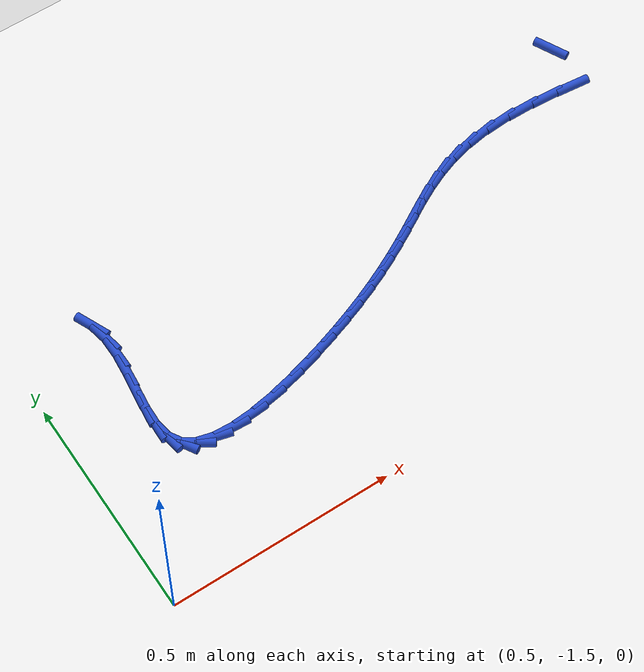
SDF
<sdf version="1.6">
 <world name="default">
  <model name="ground_plane">
   <static>1</static>
   <link name="link">
    <collision name="collision">
     <geometry><plane><normal>0 0 1</normal><size>100 100</size></plane></geometry>
     <surface><friction><ode><mu>100</mu><mu2>50</mu2></ode></friction></surface>
    </collision>
    <visual name="visual">
     <cast_shadows>0</cast_shadows>
     <geometry><plane><normal>0 0 1</normal><size>100 100</size></plane></geometry>
     <material>
      <script><uri>file://media/materials/scripts/gazebo.material</uri><name>Gazebo/WhiteGlow</name></script>
     </material>
    </visual>
   </link>
  </model>
  <model name="line">
   <link name="link_142">
    <pose>1.8841525023855348 -0.8483196131609883 0.01 0 1.57 -1.1149660216257167</pose>
    <collision name="collision">
     <geometry><cylinder><radius>0.01</radius><length>0.08</length></cylinder></geometry>
    </collision>
    <visual name="visual">
     <material>
      <script><name>Gazebo/Blue</name><uri>file://media/materials/scripts/gazebo.material</uri></script>
     </material>
     <geometry><cylinder><radius>0.01</radius><length>0.08</length></cylinder></geometry>
    </visual>
   </link>
   <link name="link_157">
    <pose>1.863333238175601 -0.9530008465977738 0.01 0 1.57 -0.1015692070725654</pose>
    <collision name="collision">
     <geometry><cylinder><radius>0.01</radius><length>0.08</length></cylinder></geometry>
    </collision>
    <visual name="visual">
     <material>
      <script><name>Gazebo/Blue</name><uri>file://media/materials/scripts/gazebo.material</uri></script>
     </material>
     <geometry><cylinder><radius>0.01</radius><length>0.08</length></cylinder></geometry>
    </visual>
   </link>
   <link name="link_158">
    <pose>1.80043320874872 -0.9465900801694339 0.01 0 1.57 -0.06238295053354625</pose>
    <collision name="collision">
     <geometry><cylinder><radius>0.01</radius><length>0.08</length></cylinder></geometry>
    </collision>
    <visual name="visual">
     <material>
      <script><name>Gazebo/Blue</name><uri>file://media/materials/scripts/gazebo.material</uri></script>
     </material>
     <geometry><cylinder><radius>0.01</radius><length>0.08</length></cylinder></geometry>
    </visual>
   </link>
   <link name="link_159">
    <pose>1.7382237870433446 -0.9427042308182975 0.01 0 1.57 -0.007404587649150495</pose>
    <collision name="collision">
     <geometry><cylinder><radius>0.01</radius><length>0.08</length></cylinder></geometry>
    </collision>
    <visual name="visual">
     <material>
      <script><name>Gazebo/Blue</name><uri>file://media/materials/scripts/gazebo.material</uri></script>
     </material>
     <geometry><cylinder><radius>0.01</radius><length>0.08</length></cylinder></geometry>
    </visual>
   </link>
   <link name="link_160">
    <pose>1.6789506139562769 -0.9422653293915512 0.01 0 1.57 0.0713140693834999</pose>
    <collision name="collision">
     <geometry><cylinder><radius>0.01</radius><length>0.08</length></cylinder></geometry>
    </collision>
    <visual name="visual">
     <material>
      <script><name>Gazebo/Blue</name><uri>file://media/materials/scripts/gazebo.material</uri></script>
     </material>
     <geometry><cylinder><radius>0.01</radius><length>0.08</length></cylinder></geometry>
    </visual>
   </link>
   <link name="link_161">
    <pose>1.624748590394745 -0.9461372623122885 0.01 0 1.57 0.16643170218546804</pose>
    <collision name="collision">
     <geometry><cylinder><radius>0.01</radius><length>0.08</length></cylinder></geometry>
    </collision>
    <visual name="visual">
     <material>
      <script><name>Gazebo/Blue</name><uri>file://media/materials/scripts/gazebo.material</uri></script>
     </material>
     <geometry><cylinder><radius>0.01</radius><length>0.08</length></cylinder></geometry>
    </visual>
   </link>
   <link name="link_162">
    <pose>1.5760903644398674 -0.9543111442646919 0.01 0 1.57 0.2623144029397136</pose>
    <collision name="collision">
     <geometry><cylinder><radius>0.01</radius><length>0.08</length></cylinder></geometry>
    </collision>
    <visual name="visual">
     <material>
      <script><name>Gazebo/Blue</name><uri>file://media/materials/scripts/gazebo.material</uri></script>
     </material>
     <geometry><cylinder><radius>0.01</radius><length>0.08</length></cylinder></geometry>
    </visual>
   </link>
   <link name="link_163">
    <pose>1.532166285935074 -0.9661048146975887 0.01 0 1.57 0.3522203689737729</pose>
    <collision name="collision">
     <geometry><cylinder><radius>0.01</radius><length>0.08</length></cylinder></geometry>
    </collision>
    <visual name="visual">
     <material>
      <script><name>Gazebo/Blue</name><uri>file://media/materials/scripts/gazebo.material</uri></script>
     </material>
     <geometry><cylinder><radius>0.01</radius><length>0.08</length></cylinder></geometry>
    </visual>
   </link>
   <link name="link_164">
    <pose>1.4921335636495636 -0.9808187122213003 0.01 0 1.57 0.42939333146302044</pose>
    <collision name="collision">
     <geometry><cylinder><radius>0.01</radius><length>0.08</length></cylinder></geometry>
    </collision>
    <visual name="visual">
     <material>
      <script><name>Gazebo/Blue</name><uri>file://media/materials/scripts/gazebo.material</uri></script>
     </material>
     <geometry><cylinder><radius>0.01</radius><length>0.08</length></cylinder></geometry>
    </visual>
   </link>
   <link name="link_165">
    <pose>1.4551494063525365 -0.9977532754461491 0.01 0 1.57 0.4878775273697918</pose>
    <collision name="collision">
     <geometry><cylinder><radius>0.01</radius><length>0.08</length></cylinder></geometry>
    </collision>
    <visual name="visual">
     <material>
      <script><name>Gazebo/Blue</name><uri>file://media/materials/scripts/gazebo.material</uri></script>
     </material>
     <geometry><cylinder><radius>0.01</radius><length>0.08</length></cylinder></geometry>
    </visual>
   </link>
   <link name="link_166">
    <pose>1.4203710228131938 -1.0162089429824552 0.01 0 1.57 0.5232579904232334</pose>
    <collision name="collision">
     <geometry><cylinder><radius>0.01</radius><length>0.08</length></cylinder></geometry>
    </collision>
    <visual name="visual">
     <material>
      <script><name>Gazebo/Blue</name><uri>file://media/materials/scripts/gazebo.material</uri></script>
     </material>
     <geometry><cylinder><radius>0.01</radius><length>0.08</length></cylinder></geometry>
    </visual>
   </link>
   <link name="link_167">
    <pose>1.3869556218007353 -1.0354861534405408 0.01 0 1.57 0.53283154829484</pose>
    <collision name="collision">
     <geometry><cylinder><radius>0.01</radius><length>0.08</length></cylinder></geometry>
    </collision>
    <visual name="visual">
     <material>
      <script><name>Gazebo/Blue</name><uri>file://media/materials/scripts/gazebo.material</uri></script>
     </material>
     <geometry><cylinder><radius>0.01</radius><length>0.08</length></cylinder></geometry>
    </visual>
   </link>
   <link name="link_168">
    <pose>1.35406041208436 -1.0548853454307268 0.01 0 1.57 0.5178223468903131</pose>
    <collision name="collision">
     <geometry><cylinder><radius>0.01</radius><length>0.08</length></cylinder></geometry>
    </collision>
    <visual name="visual">
     <material>
      <script><name>Gazebo/Blue</name><uri>file://media/materials/scripts/gazebo.material</uri></script>
     </material>
     <geometry><cylinder><radius>0.01</radius><length>0.08</length></cylinder></geometry>
    </visual>
   </link>
   <link name="link_169">
    <pose>1.3208896775870433 -1.073781846447576 0.01 0 1.57 0.4934363916704503</pose>
    <collision name="collision">
     <geometry><cylinder><radius>0.01</radius><length>0.08</length></cylinder></geometry>
    </collision>
    <visual name="visual">
     <material>
      <script><name>Gazebo/Blue</name><uri>file://media/materials/scripts/gazebo.material</uri></script>
     </material>
     <geometry><cylinder><radius>0.01</radius><length>0.08</length></cylinder></geometry>
    </visual>
   </link>
   <link name="link_170">
    <pose>1.2869514399234725 -1.0920341810654106 0.01 0 1.57 0.4663797882949359</pose>
    <collision name="collision">
     <geometry><cylinder><radius>0.01</radius><length>0.08</length></cylinder></geometry>
    </collision>
    <visual name="visual">
     <material>
      <script><name>Gazebo/Blue</name><uri>file://media/materials/scripts/gazebo.material</uri></script>
     </material>
     <geometry><cylinder><radius>0.01</radius><length>0.08</length></cylinder></geometry>
    </visual>
   </link>
   <link name="link_171">
    <pose>1.25187430748267 -1.1096927077297165 0.01 0 1.57 0.4375598921036036</pose>
    <collision name="collision">
     <geometry><cylinder><radius>0.01</radius><length>0.08</length></cylinder></geometry>
    </collision>
    <visual name="visual">
     <material>
      <script><name>Gazebo/Blue</name><uri>file://media/materials/scripts/gazebo.material</uri></script>
     </material>
     <geometry><cylinder><radius>0.01</radius><length>0.08</length></cylinder></geometry>
    </visual>
   </link>
   <link name="link_172">
    <pose>1.215287193684848 -1.1268082701408006 0.01 0 1.57 0.40789837295177966</pose>
    <collision name="collision">
     <geometry><cylinder><radius>0.01</radius><length>0.08</length></cylinder></geometry>
    </collision>
    <visual name="visual">
     <material>
      <script><name>Gazebo/Blue</name><uri>file://media/materials/scripts/gazebo.material</uri></script>
     </material>
     <geometry><cylinder><radius>0.01</radius><length>0.08</length></cylinder></geometry>
    </visual>
   </link>
   <link name="link_173">
    <pose>1.1768190119502178 -1.1434317119989712 0.01 0 1.57 0.37826094107988906</pose>
    <collision name="collision">
     <geometry><cylinder><radius>0.01</radius><length>0.08</length></cylinder></geometry>
    </collision>
    <visual name="visual">
     <material>
      <script><name>Gazebo/Blue</name><uri>file://media/materials/scripts/gazebo.material</uri></script>
     </material>
     <geometry><cylinder><radius>0.01</radius><length>0.08</length></cylinder></geometry>
    </visual>
   </link>
   <link name="link_174">
    <pose>1.1360986756989933 -1.1596138770045343 0.01 0 1.57 0.34939095591263036</pose>
    <collision name="collision">
     <geometry><cylinder><radius>0.01</radius><length>0.08</length></cylinder></geometry>
    </collision>
    <visual name="visual">
     <material>
      <script><name>Gazebo/Blue</name><uri>file://media/materials/scripts/gazebo.material</uri></script>
     </material>
     <geometry><cylinder><radius>0.01</radius><length>0.08</length></cylinder></geometry>
    </visual>
   </link>
   <link name="link_175">
    <pose>1.0927550983513858 -1.1754056088577973 0.01 0 1.57 0.32187046555529936</pose>
    <collision name="collision">
     <geometry><cylinder><radius>0.01</radius><length>0.08</length></cylinder></geometry>
    </collision>
    <visual name="visual">
     <material>
      <script><name>Gazebo/Blue</name><uri>file://media/materials/scripts/gazebo.material</uri></script>
     </material>
     <geometry><cylinder><radius>0.01</radius><length>0.08</length></cylinder></geometry>
    </visual>
   </link>
   <link name="link_176">
    <pose>1.0464171933276074 -1.1908577512590672 0.01 0 1.57 0.29525401902226495</pose>
    <collision name="collision">
     <geometry><cylinder><radius>0.01</radius><length>0.08</length></cylinder></geometry>
    </collision>
    <visual name="visual">
     <material>
      <script><name>Gazebo/Blue</name><uri>file://media/materials/scripts/gazebo.material</uri></script>
     </material>
     <geometry><cylinder><radius>0.01</radius><length>0.08</length></cylinder></geometry>
    </visual>
   </link>
   <link name="link_177">
    <pose>0.9969012862162262 -1.2059177032022075 0.01 0 1.57 0.26287873481981266</pose>
    <collision name="collision">
     <geometry><cylinder><radius>0.01</radius><length>0.08</length></cylinder></geometry>
    </collision>
    <visual name="visual">
     <material>
      <script><name>Gazebo/Blue</name><uri>file://media/materials/scripts/gazebo.material</uri></script>
     </material>
     <geometry><cylinder><radius>0.01</radius><length>0.08</length></cylinder></geometry>
    </visual>
   </link>
   <link name="link_178">
    <pose>0.9453864604524894 -1.2197806708718208 0.01 0 1.57 0.21927135845628798</pose>
    <collision name="collision">
     <geometry><cylinder><radius>0.01</radius><length>0.08</length></cylinder></geometry>
    </collision>
    <visual name="visual">
     <material>
      <script><name>Gazebo/Blue</name><uri>file://media/materials/scripts/gazebo.material</uri></script>
     </material>
     <geometry><cylinder><radius>0.01</radius><length>0.08</length></cylinder></geometry>
    </visual>
   </link>
   <link name="link_179">
    <pose>0.8936539599080126 -1.23130948977392 0.01 0 1.57 0.15922729126191054</pose>
    <collision name="collision">
     <geometry><cylinder><radius>0.01</radius><length>0.08</length></cylinder></geometry>
    </collision>
    <visual name="visual">
     <material>
      <script><name>Gazebo/Blue</name><uri>file://media/materials/scripts/gazebo.material</uri></script>
     </material>
     <geometry><cylinder><radius>0.01</radius><length>0.08</length></cylinder></geometry>
    </visual>
   </link>
   <link name="link_180">
    <pose>0.8434876886832957 -1.2393655270648458 0.01 0 1.57 0.07344533503969917</pose>
    <collision name="collision">
     <geometry><cylinder><radius>0.01</radius><length>0.08</length></cylinder></geometry>
    </collision>
    <visual name="visual">
     <material>
      <script><name>Gazebo/Blue</name><uri>file://media/materials/scripts/gazebo.material</uri></script>
     </material>
     <geometry><cylinder><radius>0.01</radius><length>0.08</length></cylinder></geometry>
    </visual>
   </link>
   <link name="link_181">
    <pose>0.7966715508788395 -1.242810149900936 0.01 0 1.57 -0.055253402844461855</pose>
    <collision name="collision">
     <geometry><cylinder><radius>0.01</radius><length>0.08</length></cylinder></geometry>
    </collision>
    <visual name="visual">
     <material>
      <script><name>Gazebo/Blue</name><uri>file://media/materials/scripts/gazebo.material</uri></script>
     </material>
     <geometry><cylinder><radius>0.01</radius><length>0.08</length></cylinder></geometry>
    </visual>
   </link>
   <link name="link_182">
    <pose>0.754989450595144 -1.240504725438531 0.01 0 1.57 -0.25855118359278684</pose>
    <collision name="collision">
     <geometry><cylinder><radius>0.01</radius><length>0.08</length></cylinder></geometry>
    </collision>
    <visual name="visual">
     <material>
      <script><name>Gazebo/Blue</name><uri>file://media/materials/scripts/gazebo.material</uri></script>
     </material>
     <geometry><cylinder><radius>0.01</radius><length>0.08</length></cylinder></geometry>
    </visual>
   </link>
   <link name="link_183">
    <pose>0.7202252919327118 -1.23131062083397 0.01 0 1.57 -0.5839151359982597</pose>
    <collision name="collision">
     <geometry><cylinder><radius>0.01</radius><length>0.08</length></cylinder></geometry>
    </collision>
    <visual name="visual">
     <material>
      <script><name>Gazebo/Blue</name><uri>file://media/materials/scripts/gazebo.material</uri></script>
     </material>
     <geometry><cylinder><radius>0.01</radius><length>0.08</length></cylinder></geometry>
    </visual>
   </link>
   <link name="link_184">
    <pose>0.6941629789920434 -1.214089203243592 0.01 0 1.57 -1.034084203194076</pose>
    <collision name="collision">
     <geometry><cylinder><radius>0.01</radius><length>0.08</length></cylinder></geometry>
    </collision>
    <visual name="visual">
     <material>
      <script><name>Gazebo/Blue</name><uri>file://media/materials/scripts/gazebo.material</uri></script>
     </material>
     <geometry><cylinder><radius>0.01</radius><length>0.08</length></cylinder></geometry>
    </visual>
   </link>
   <link name="link_185">
    <pose>0.6785000442267181 -1.187763577540232 0.01 0 1.57 -1.4067672838452123</pose>
    <collision name="collision">
     <geometry><cylinder><radius>0.01</radius><length>0.08</length></cylinder></geometry>
    </collision>
    <visual name="visual">
     <material>
      <script><name>Gazebo/Blue</name><uri>file://media/materials/scripts/gazebo.material</uri></script>
     </material>
     <geometry><cylinder><radius>0.01</radius><length>0.08</length></cylinder></geometry>
    </visual>
   </link>
   <link name="link_186">
    <pose>0.6727195804763857 -1.1528397111442643 0.01 0 1.57 1.5409016356526541</pose>
    <collision name="collision">
     <geometry><cylinder><radius>0.01</radius><length>0.08</length></cylinder></geometry>
    </collision>
    <visual name="visual">
     <material>
      <script><name>Gazebo/Blue</name><uri>file://media/materials/scripts/gazebo.material</uri></script>
     </material>
     <geometry><cylinder><radius>0.01</radius><length>0.08</length></cylinder></geometry>
    </visual>
   </link>
   <link name="link_187">
    <pose>0.6739557090185555 -1.1115025963126701 0.01 0 1.57 1.455370025580681</pose>
    <collision name="collision">
     <geometry><cylinder><radius>0.01</radius><length>0.08</length></cylinder></geometry>
    </collision>
    <visual name="visual">
     <material>
      <script><name>Gazebo/Blue</name><uri>file://media/materials/scripts/gazebo.material</uri></script>
     </material>
     <geometry><cylinder><radius>0.01</radius><length>0.08</length></cylinder></geometry>
    </visual>
   </link>
   <link name="link_188">
    <pose>0.679229243751473 -1.0660182164506478 0.01 0 1.57 1.4379059991224001</pose>
    <collision name="collision">
     <geometry><cylinder><radius>0.01</radius><length>0.08</length></cylinder></geometry>
    </collision>
    <visual name="visual">
     <material>
      <script><name>Gazebo/Blue</name><uri>file://media/materials/scripts/gazebo.material</uri></script>
     </material>
     <geometry><cylinder><radius>0.01</radius><length>0.08</length></cylinder></geometry>
    </visual>
   </link>
   <link name="link_189">
    <pose>0.6855609985733832 -1.0186525549633978 0.01 0 1.57 1.4771861157994683</pose>
    <collision name="collision">
     <geometry><cylinder><radius>0.01</radius><length>0.08</length></cylinder></geometry>
    </collision>
    <visual name="visual">
     <material>
      <script><name>Gazebo/Blue</name><uri>file://media/materials/scripts/gazebo.material</uri></script>
     </material>
     <geometry><cylinder><radius>0.01</radius><length>0.08</length></cylinder></geometry>
    </visual>
   </link>
   <link name="link_190">
    <pose>0.6899717873825318 -0.9716715952561181 0.01 0 1.57 -1.5597577434763295</pose>
    <collision name="collision">
     <geometry><cylinder><radius>0.01</radius><length>0.08</length></cylinder></geometry>
    </collision>
    <visual name="visual">
     <material>
      <script><name>Gazebo/Blue</name><uri>file://media/materials/scripts/gazebo.material</uri></script>
     </material>
     <geometry><cylinder><radius>0.01</radius><length>0.08</length></cylinder></geometry>
    </visual>
   </link>
   <link name="link_191">
    <pose>0.6894824240771644 -0.9273413207340114 0.01 0 1.57 -1.3741572644242155</pose>
    <collision name="collision">
     <geometry><cylinder><radius>0.01</radius><length>0.08</length></cylinder></geometry>
    </collision>
    <visual name="visual">
     <material>
      <script><name>Gazebo/Blue</name><uri>file://media/materials/scripts/gazebo.material</uri></script>
     </material>
     <geometry><cylinder><radius>0.01</radius><length>0.08</length></cylinder></geometry>
    </visual>
   </link>
   <link name="link_192">
    <pose>0.6815641155932083 -0.8875934422546341 0.01 0 1.57 -1.1581193587559904</pose>
    <collision name="collision">
     <geometry><cylinder><radius>0.01</radius><length>0.08</length></cylinder></geometry>
    </collision>
    <visual name="visual">
     <material>
      <script><name>Gazebo/Blue</name><uri>file://media/materials/scripts/gazebo.material</uri></script>
     </material>
     <geometry><cylinder><radius>0.01</radius><length>0.08</length></cylinder></geometry>
    </visual>
   </link>
  </model>
 </world>
</sdf>
